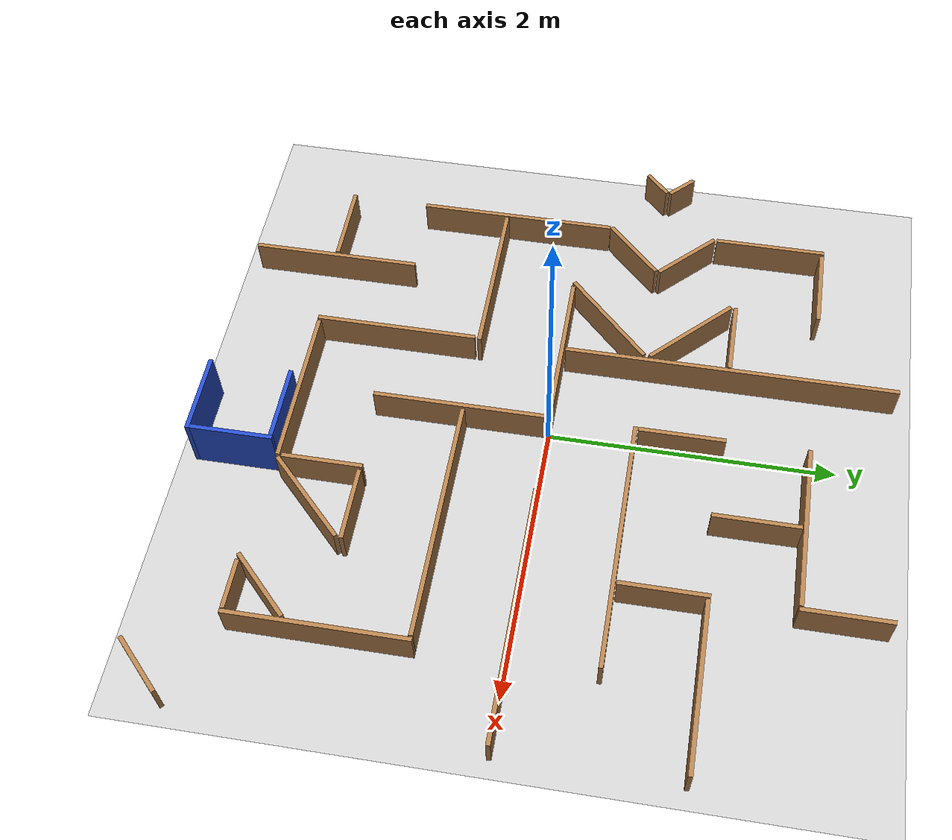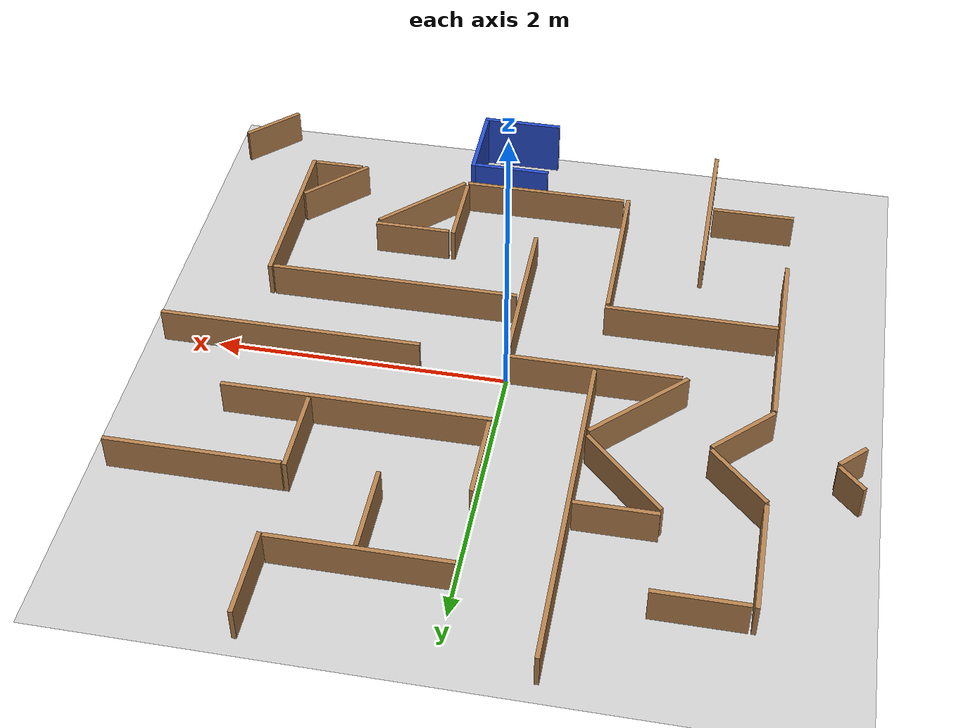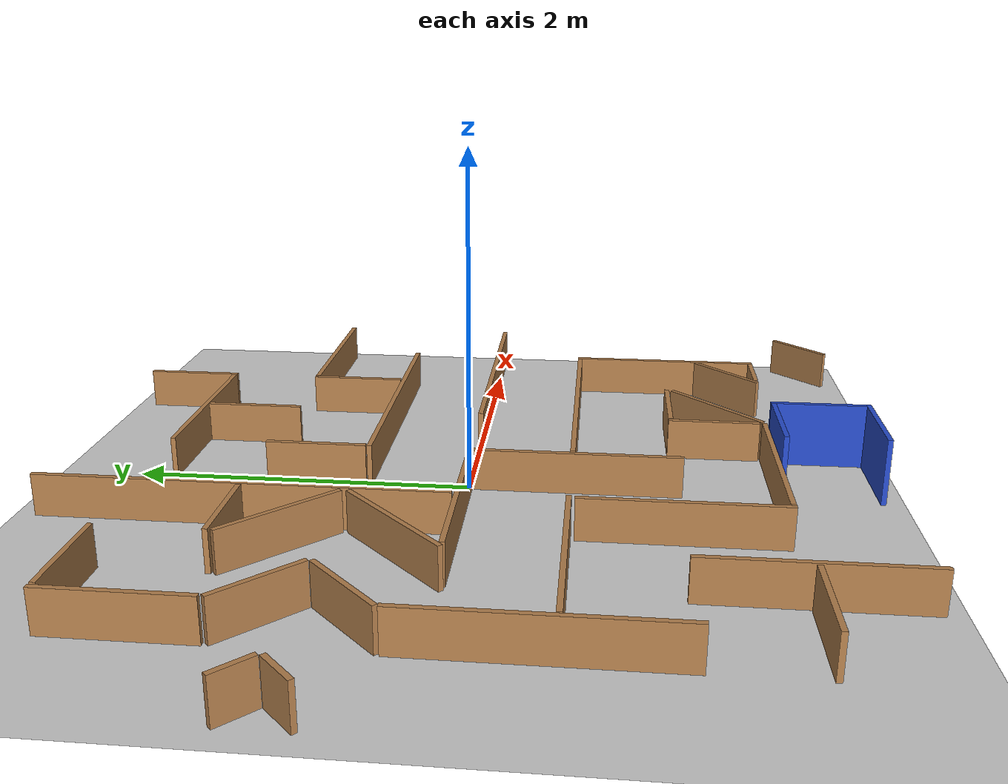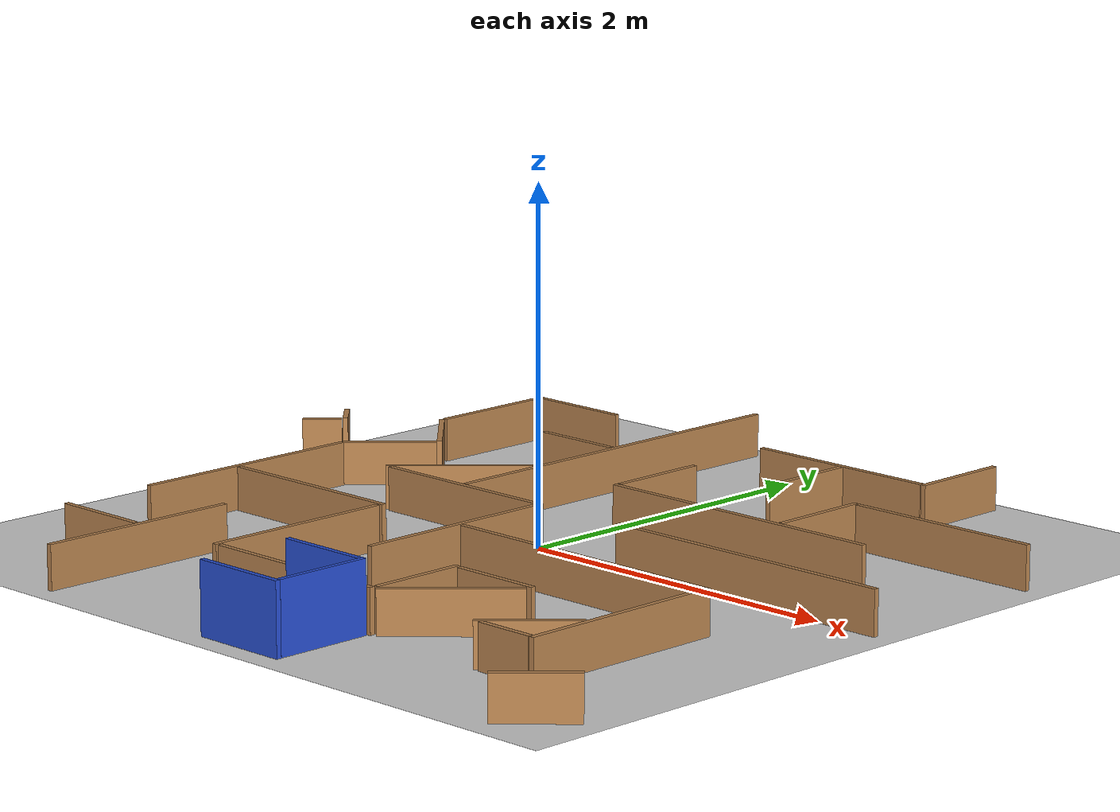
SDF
<?xml version="1.0"?>
<sdf version="1.4">
<model name="task3b">
  <static>true</static>
    <link name="floor">
      <collision name="collision">
        <geometry>
          <plane>
            <normal>0 0 1</normal>
            <size>5.0 5.0</size>
          </plane>
        </geometry>
        <surface>
          <friction>
            <ode>
              <mu>100</mu>
              <mu2>50</mu2>
            </ode>
          </friction>
        </surface>
      </collision>
      <visual name="visual">
        <cast_shadows>false</cast_shadows>
        <geometry>
          <plane>
            <normal>0 0 1</normal>
            <size>5.0 5.0</size>
          </plane>
        </geometry>
        <material>
          <script>
            <uri>model://task3b/materials/scripts</uri>
            <uri>model://task3b/materials/textures</uri>
            <name>Task3BFloor/Image</name>
          </script>
        </material>
      </visual>
    </link>
    <link name='start_zone'>
      <pose frame=''>0.293 -2.08583 0.2 0 0 3.142</pose>
      <collision name='Right_Wall_Collision'>
        <geometry>
          <box>
            <size>0.57 0.03 0.4</size>
          </box>
        </geometry>
        <pose frame=''>0 0.2850 0 0 0 0</pose>
      </collision>
      <visual name='Right_Wall_Visual'>
        <pose frame=''>0 0.2850 0 0 0 0</pose>
        <geometry>
          <box>
            <size>0.57 0.03 0.4</size>
          </box>
        </geometry>
        <material>
          <script>
            <uri>file://media/materials/scripts/gazebo.material</uri>
            <name>Gazebo/Blue</name>
          </script>
        </material>
      </visual>
      <collision name='Back_Wall_Collision'>
        <geometry>
          <box>
            <size>0.57 0.03 0.4</size>
          </box>
        </geometry>
        <pose frame=''>-0.27 -0.015 0 0 0 1.571</pose>
      </collision>
      <visual name='Back_Wall_Visual'>
        <pose frame=''>-0.27 -0.015 0 0 0 1.571</pose>
        <geometry>
          <box>
            <size>0.57 0.03 0.4</size>
          </box>
        </geometry>
        <material>
          <script>
            <uri>file://media/materials/scripts/gazebo.material</uri>
            <name>Gazebo/Blue</name>
          </script>
        </material>
      </visual>
      <collision name='Left_Wall_Collision'>
        <geometry>
          <box>
            <size>0.54 0.03 0.4</size>
          </box>
        </geometry>
        <pose frame=''>0.015 -0.285 0 0 0 0</pose>
      </collision>
      <visual name='Left_Wall_Visual'>
        <pose frame=''>0.015 -0.285 0 0 0 0</pose>
        <geometry>
          <box>
            <size>0.54 0.03 0.4</size>
          </box>
        </geometry>
        <material>
          <script>
            <uri>file://media/materials/scripts/gazebo.material</uri>
            <name>Gazebo/Blue</name>
          </script>
        </material>
      </visual>
    </link>
    <link name='wall_1'>
      <pose frame=''>-1.19106 -1.79071 0.125 0 0 0</pose>
      <collision name='coll'>
        <geometry>
          <box>
            <size>0.03 1.20 0.25</size>
          </box>
        </geometry>
      </collision>
      <visual name='vis'>
        <geometry>
          <box>
            <size>0.03 1.20 0.25</size>
          </box>
        </geometry>
        <material>
          <script>
            <uri>file://media/materials/scripts/gazebo.material</uri>
            <name>Gazebo/Wood</name>
          </script>
        </material>
      </visual>
    </link>
    <link name='wall_2'>
      <pose frame=''>-1.50876 -1.78553 0.125 0 0 0</pose>
      <collision name='coll'>
        <geometry>
          <box>
            <size>0.58 0.03 0.25</size>
          </box>
        </geometry>
      </collision>
      <visual name='vis'>
        <geometry>
          <box>
            <size>0.58 0.03 0.25</size>
          </box>
        </geometry>
        <material>
          <script>
            <uri>file://media/materials/scripts/gazebo.material</uri>
            <name>Gazebo/Wood</name>
          </script>
        </material>
      </visual>
    </link>
    <link name='wall_3'>
      <pose frame=''>0.01518 -1.76333 0.125 0 0 0</pose>
      <collision name='coll'>
        <geometry>
          <box>
            <size>1.16 0.03 0.25</size>
          </box>
        </geometry>
      </collision>
      <visual name='vis'>
        <geometry>
          <box>
            <size>1.16 0.03 0.25</size>
          </box>
        </geometry>
        <material>
          <script>
            <uri>file://media/materials/scripts/gazebo.material</uri>
            <name>Gazebo/Wood</name>
          </script>
        </material>
      </visual>
    </link>
    <link name='wall_4'>
      <pose frame=''>-0.59518 -1.20333 0.125 0 0 0</pose>
      <collision name='coll'>
        <geometry>
          <box>
            <size>0.03 1.15 0.25</size>
          </box>
        </geometry>
      </collision>
      <visual name='vis'>
        <geometry>
          <box>
            <size>0.03 1.15 0.25</size>
          </box>
        </geometry>
        <material>
          <script>
            <uri>file://media/materials/scripts/gazebo.material</uri>
            <name>Gazebo/Wood</name>
          </script>
        </material>
      </visual>
    </link>
    <link name='wall_5'>
      <pose frame=''>-1.17018 -0.59518 0.125 0 0 0</pose>
      <collision name='coll'>
        <geometry>
          <box>
            <size>1.18 0.03 0.25</size>
          </box>
        </geometry>
      </collision>
      <visual name='vis'>
        <geometry>
          <box>
            <size>1.18 0.03 0.25</size>
          </box>
        </geometry>
        <material>
          <script>
            <uri>file://media/materials/scripts/gazebo.material</uri>
            <name>Gazebo/Wood</name>
          </script>
        </material>
      </visual>
    </link>
    <link name='wall_6'>
      <pose frame=''>-1.78464 -0.51681 0.125 0 0 0</pose>
      <collision name='coll'>
        <geometry>
          <box>
            <size>0.03 1.42 0.25</size>
          </box>
        </geometry>
      </collision>
      <visual name='vis'>
        <geometry>
          <box>
            <size>0.03 1.42 0.25</size>
          </box>
        </geometry>
        <material>
          <script>
            <uri>file://media/materials/scripts/gazebo.material</uri>
            <name>Gazebo/Wood</name>
          </script>
        </material>
      </visual>
    </link>
    <link name='wall_7'>
      <pose frame=''>-2.28978 0.49954 0.125 0 0 0.786</pose>
      <collision name='coll'>
        <geometry>
          <box>
            <size>0.23 0.03 0.25</size>
          </box>
        </geometry>
      </collision>
      <visual name='vis'>
        <geometry>
          <box>
            <size>0.23 0.03 0.25</size>
          </box>
        </geometry>
        <material>
          <script>
            <uri>file://media/materials/scripts/gazebo.material</uri>
            <name>Gazebo/Wood</name>
          </script>
        </material>
      </visual>
    </link>
    <link name='wall_8'>
      <pose frame=''>-2.28914 0.68578 0.125 0 0 -0.786</pose>
      <collision name='coll'>
        <geometry>
          <box>
            <size>0.23 0.03 0.25</size>
          </box>
        </geometry>
      </collision>
      <visual name='vis'>
        <geometry>
          <box>
            <size>0.23 0.03 0.25</size>
          </box>
        </geometry>
        <material>
          <script>
            <uri>file://media/materials/scripts/gazebo.material</uri>
            <name>Gazebo/Wood</name>
          </script>
        </material>
      </visual>
    </link>
    <link name='wall_9'>
      <pose frame=''>-1.60040 0.39347 0.125 0 0 0.786</pose>
      <collision name='coll'>
        <geometry>
          <box>
            <size>0.53 0.03 0.25</size>
          </box>
        </geometry>
      </collision>
      <visual name='vis'>
        <geometry>
          <box>
            <size>0.53 0.03 0.25</size>
          </box>
        </geometry>
        <material>
          <script>
            <uri>file://media/materials/scripts/gazebo.material</uri>
            <name>Gazebo/Wood</name>
          </script>
        </material>
      </visual>
    </link>
    <link name='wall_10'>
      <pose frame=''>-1.59976 0.79185 0.125 0 0 -0.786</pose>
      <collision name='coll'>
        <geometry>
          <box>
            <size>0.53 0.03 0.25</size>
          </box>
        </geometry>
      </collision>
      <visual name='vis'>
        <geometry>
          <box>
            <size>0.53 0.03 0.25</size>
          </box>
        </geometry>
        <material>
          <script>
            <uri>file://media/materials/scripts/gazebo.material</uri>
            <name>Gazebo/Wood</name>
          </script>
        </material>
      </visual>
    </link>
    <link name='wall_11'>
      <pose frame=''>-1.78464 1.39968 0.125 0 0 0</pose>
      <collision name='coll'>
        <geometry>
          <box>
            <size>0.03 0.8 0.25</size>
          </box>
        </geometry>
      </collision>
      <visual name='vis'>
        <geometry>
          <box>
            <size>0.03 0.8 0.25</size>
          </box>
        </geometry>
        <material>
          <script>
            <uri>file://media/materials/scripts/gazebo.material</uri>
            <name>Gazebo/Wood</name>
          </script>
        </material>
      </visual>
    </link>
    <link name='wall_12'>
      <pose frame=''>-1.45316 1.78468 0.125 0 0 0</pose>
      <collision name='coll'>
        <geometry>
          <box>
            <size>0.60 0.03 0.25</size>
          </box>
        </geometry>
      </collision>
      <visual name='vis'>
        <geometry>
          <box>
            <size>0.60 0.03 0.25</size>
          </box>
        </geometry>
        <material>
          <script>
            <uri>file://media/materials/scripts/gazebo.material</uri>
            <name>Gazebo/Wood</name>
          </script>
        </material>
      </visual>
    </link>
    <link name='wall_13'>
      <pose frame=''>-0.59518 1.20173 0.125 0 0 0</pose>
      <collision name='coll'>
        <geometry>
          <box>
            <size>0.03 2.35 0.25</size>
          </box>
        </geometry>
      </collision>
      <visual name='vis'>
        <geometry>
          <box>
            <size>0.03 2.35 0.25</size>
          </box>
        </geometry>
        <material>
          <script>
            <uri>file://media/materials/scripts/gazebo.material</uri>
            <name>Gazebo/Wood</name>
          </script>
        </material>
      </visual>
    </link>
    <link name='wall_14'>
      <pose frame=''>-0.88788 1.19036 0.125 0 0 0</pose>
      <collision name='coll'>
        <geometry>
          <box>
            <size>0.54 0.03 0.25</size>
          </box>
        </geometry>
      </collision>
      <visual name='vis'>
        <geometry>
          <box>
            <size>0.54 0.03 0.25</size>
          </box>
        </geometry>
        <material>
          <script>
            <uri>file://media/materials/scripts/gazebo.material</uri>
            <name>Gazebo/Wood</name>
          </script>
        </material>
      </visual>
    </link>
    <link name='wall_15'>
      <pose frame=''>-0.89569 0.88963 0.125 0 0 -0.786</pose>
      <collision name='coll'>
        <geometry>
          <box>
            <size>0.75 0.03 0.25</size>
          </box>
        </geometry>
      </collision>
      <visual name='vis'>
        <geometry>
          <box>
            <size>0.75 0.03 0.25</size>
          </box>
        </geometry>
        <material>
          <script>
            <uri>file://media/materials/scripts/gazebo.material</uri>
            <name>Gazebo/Wood</name>
          </script>
        </material>
      </visual>
    </link>
    <link name='wall_16'>
      <pose frame=''>-0.92043 0.29158 0.125 0 0 0.786</pose>
      <collision name='coll'>
        <geometry>
          <box>
            <size>0.82 0.03 0.25</size>
          </box>
        </geometry>
      </collision>
      <visual name='vis'>
        <geometry>
          <box>
            <size>0.82 0.03 0.25</size>
          </box>
        </geometry>
        <material>
          <script>
            <uri>file://media/materials/scripts/gazebo.material</uri>
            <name>Gazebo/Wood</name>
          </script>
        </material>
      </visual>
    </link>
    <link name='wall_17'>
      <pose frame=''>-0.59636 0 0.125 0 0 0</pose>
      <collision name='coll'>
        <geometry>
          <box>
            <size>1.15 0.03 0.25</size>
          </box>
        </geometry>
      </collision>
      <visual name='vis'>
        <geometry>
          <box>
            <size>1.15 0.03 0.25</size>
          </box>
        </geometry>
        <material>
          <script>
            <uri>file://media/materials/scripts/gazebo.material</uri>
            <name>Gazebo/Wood</name>
          </script>
        </material>
      </visual>
    </link>
    <link name='wall_18'>
      <pose frame=''>0 -0.61 0.125 0 0 0</pose>
      <collision name='coll'>
        <geometry>
          <box>
            <size>0.03 1.25 0.25</size>
          </box>
        </geometry>
      </collision>
      <visual name='vis'>
        <geometry>
          <box>
            <size>0.03 1.25 0.25</size>
          </box>
        </geometry>
        <material>
          <script>
            <uri>file://media/materials/scripts/gazebo.material</uri>
            <name>Gazebo/Wood</name>
          </script>
        </material>
      </visual>
    </link>
    <link name='wall_19'>
      <pose frame=''>0.89576 -0.59855 0.125 0 0 0</pose>
      <collision name='coll'>
        <geometry>
          <box>
            <size>1.73 0.03 0.25</size>
          </box>
        </geometry>
      </collision>
      <visual name='vis'>
        <geometry>
          <box>
            <size>1.73 0.03 0.25</size>
          </box>
        </geometry>
        <material>
          <script>
            <uri>file://media/materials/scripts/gazebo.material</uri>
            <name>Gazebo/Wood</name>
          </script>
        </material>
      </visual>
    </link>
    <link name='wall_20'>
      <pose frame=''>1.78553 -1.20355 0.125 0 0 0</pose>
      <collision name='coll'>
        <geometry>
          <box>
            <size>0.03 1.24 0.25</size>
          </box>
        </geometry>
      </collision>
      <visual name='vis'>
        <geometry>
          <box>
            <size>0.03 1.24 0.25</size>
          </box>
        </geometry>
        <material>
          <script>
            <uri>file://media/materials/scripts/gazebo.material</uri>
            <name>Gazebo/Wood</name>
          </script>
        </material>
      </visual>
    </link>
    <link name='wall_21'>
      <pose frame=''>1.59063 -1.80855 0.125 0 0 0</pose>
      <collision name='coll'>
        <geometry>
          <box>
            <size>0.35 0.03 0.25</size>
          </box>
        </geometry>
      </collision>
      <visual name='vis'>
        <geometry>
          <box>
            <size>0.35 0.03 0.25</size>
          </box>
        </geometry>
        <material>
          <script>
            <uri>file://media/materials/scripts/gazebo.material</uri>
            <name>Gazebo/Wood</name>
          </script>
        </material>
      </visual>
    </link>
    <link name='wall_22'>
      <pose frame=''>1.56633 -1.61938 0.125 0 0 0.786</pose>
      <collision name='coll'>
        <geometry>
          <box>
            <size>0.55 0.03 0.25</size>
          </box>
        </geometry>
      </collision>
      <visual name='vis'>
        <geometry>
          <box>
            <size>0.55 0.03 0.25</size>
          </box>
        </geometry>
        <material>
          <script>
            <uri>file://media/materials/scripts/gazebo.material</uri>
            <name>Gazebo/Wood</name>
          </script>
        </material>
      </visual>
    </link>
    <link name='wall_23'>
      <pose frame=''>0.88211 -1.49248 0.125 0 0 0.786</pose>
      <collision name='coll'>
        <geometry>
          <box>
            <size>0.75 0.03 0.25</size>
          </box>
        </geometry>
      </collision>
      <visual name='vis'>
        <geometry>
          <box>
            <size>0.75 0.03 0.25</size>
          </box>
        </geometry>
        <material>
          <script>
            <uri>file://media/materials/scripts/gazebo.material</uri>
            <name>Gazebo/Wood</name>
          </script>
        </material>
      </visual>
    </link>
    <link name='wall_24'>
      <pose frame=''>0.89255 -1.19035 0.125 0 0 0</pose>
      <collision name='coll'>
        <geometry>
          <box>
            <size>0.53 0.03 0.25</size>
          </box>
        </geometry>
      </collision>
      <visual name='vis'>
        <geometry>
          <box>
            <size>0.53 0.03 0.25</size>
          </box>
        </geometry>
        <material>
          <script>
            <uri>file://media/materials/scripts/gazebo.material</uri>
            <name>Gazebo/Wood</name>
          </script>
        </material>
      </visual>
    </link>
    <link name='wall_25'>
      <pose frame=''>0.59518 -1.45535 0.125 0 0 0</pose>
      <collision name='coll'>
        <geometry>
          <box>
            <size>0.03 0.56 0.25</size>
          </box>
        </geometry>
      </collision>
      <visual name='vis'>
        <geometry>
          <box>
            <size>0.03 0.56 0.25</size>
          </box>
        </geometry>
        <material>
          <script>
            <uri>file://media/materials/scripts/gazebo.material</uri>
            <name>Gazebo/Wood</name>
          </script>
        </material>
      </visual>
    </link>
    <link name='wall_26'>
      <pose frame=''>2.21563 -2.21940 0.125 0 0 0.786</pose>
      <collision name='coll'>
        <geometry>
          <box>
            <size>0.45 0.03 0.25</size>
          </box>
        </geometry>
      </collision>
      <visual name='vis'>
        <geometry>
          <box>
            <size>0.45 0.03 0.25</size>
          </box>
        </geometry>
        <material>
          <script>
            <uri>file://media/materials/scripts/gazebo.material</uri>
            <name>Gazebo/Wood</name>
          </script>
        </material>
      </visual>
    </link>
    <link name='wall_27'>
      <pose frame=''>1.48582 0 0.125 0 0 0</pose>
      <collision name='coll'>
        <geometry>
          <box>
            <size>1.8 0.03 0.25</size>
          </box>
        </geometry>
      </collision>
      <visual name='vis'>
        <geometry>
          <box>
            <size>1.8 0.03 0.25</size>
          </box>
        </geometry>
        <material>
          <script>
            <uri>file://media/materials/scripts/gazebo.material</uri>
            <name>Gazebo/Wood</name>
          </script>
        </material>
      </visual>
    </link>
    <link name='wall_28'>
      <pose frame=''>0.88609 0.59518 0.125 0 0 0</pose>
      <collision name='coll'>
        <geometry>
          <box>
            <size>1.8 0.03 0.25</size>
          </box>
        </geometry>
      </collision>
      <visual name='vis'>
        <geometry>
          <box>
            <size>1.8 0.03 0.25</size>
          </box>
        </geometry>
        <material>
          <script>
            <uri>file://media/materials/scripts/gazebo.material</uri>
            <name>Gazebo/Wood</name>
          </script>
        </material>
      </visual>
    </link>
    <link name='wall_29'>
      <pose frame=''>0.00109 0.91744 0.125 0 0 0</pose>
      <collision name='coll'>
        <geometry>
          <box>
            <size>0.03 0.6 0.25</size>
          </box>
        </geometry>
      </collision>
      <visual name='vis'>
        <geometry>
          <box>
            <size>0.03 0.6 0.25</size>
          </box>
        </geometry>
        <material>
          <script>
            <uri>file://media/materials/scripts/gazebo.material</uri>
            <name>Gazebo/Wood</name>
          </script>
        </material>
      </visual>
    </link>
    <link name='wall_30'>
      <pose frame=''>1.18749 0.91744 0.125 0 0 0</pose>
      <collision name='coll'>
        <geometry>
          <box>
            <size>0.03 0.6 0.25</size>
          </box>
        </geometry>
      </collision>
      <visual name='vis'>
        <geometry>
          <box>
            <size>0.03 0.6 0.25</size>
          </box>
        </geometry>
        <material>
          <script>
            <uri>file://media/materials/scripts/gazebo.material</uri>
            <name>Gazebo/Wood</name>
          </script>
        </material>
      </visual>
    </link>
    <link name='wall_31'>
      <pose frame=''>1.79524 1.20244 0.125 0 0 0</pose>
      <collision name='coll'>
        <geometry>
          <box>
            <size>1.17 0.03 0.25</size>
          </box>
        </geometry>
      </collision>
      <visual name='vis'>
        <geometry>
          <box>
            <size>1.17 0.03 0.25</size>
          </box>
        </geometry>
        <material>
          <script>
            <uri>file://media/materials/scripts/gazebo.material</uri>
            <name>Gazebo/Wood</name>
          </script>
        </material>
      </visual>
    </link>
    <link name='wall_32'>
      <pose frame=''>0.59518 1.46708 0.125 0 0 0</pose>
      <collision name='coll'>
        <geometry>
          <box>
            <size>0.03 0.6 0.25</size>
          </box>
        </geometry>
      </collision>
      <visual name='vis'>
        <geometry>
          <box>
            <size>0.03 0.6 0.25</size>
          </box>
        </geometry>
        <material>
          <script>
            <uri>file://media/materials/scripts/gazebo.material</uri>
            <name>Gazebo/Wood</name>
          </script>
        </material>
      </visual>
    </link>
    <link name='wall_33'>
      <pose frame=''>0.57609 1.78553 0.125 0 0 0</pose>
      <collision name='coll'>
        <geometry>
          <box>
            <size>1.18 0.03 0.25</size>
          </box>
        </geometry>
      </collision>
      <visual name='vis'>
        <geometry>
          <box>
            <size>1.18 0.03 0.25</size>
          </box>
        </geometry>
        <material>
          <script>
            <uri>file://media/materials/scripts/gazebo.material</uri>
            <name>Gazebo/Wood</name>
          </script>
        </material>
      </visual>
    </link>
    <link name='wall_34'>
      <pose frame=''>1.18749 2.07553 0.125 0 0 0</pose>
      <collision name='coll'>
        <geometry>
          <box>
            <size>0.03 0.61 0.25</size>
          </box>
        </geometry>
      </collision>
      <visual name='vis'>
        <geometry>
          <box>
            <size>0.03 0.61 0.25</size>
          </box>
        </geometry>
        <material>
          <script>
            <uri>file://media/materials/scripts/gazebo.material</uri>
            <name>Gazebo/Wood</name>
          </script>
        </material>
      </visual>
    </link>
  </model>
</sdf>
